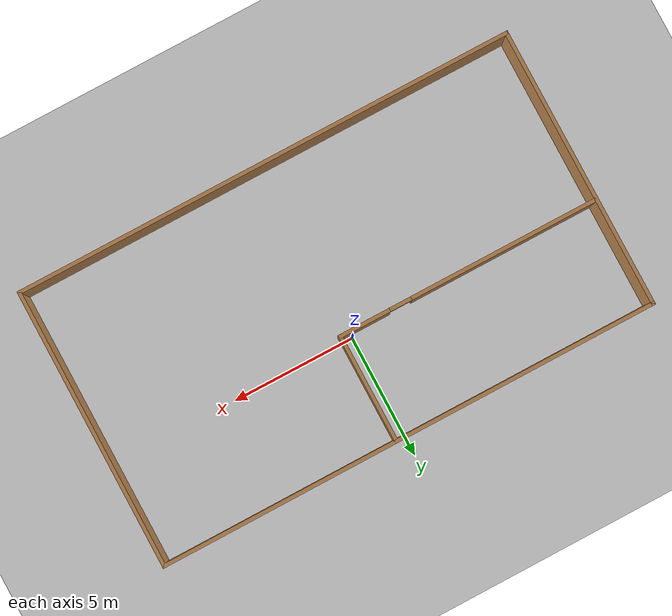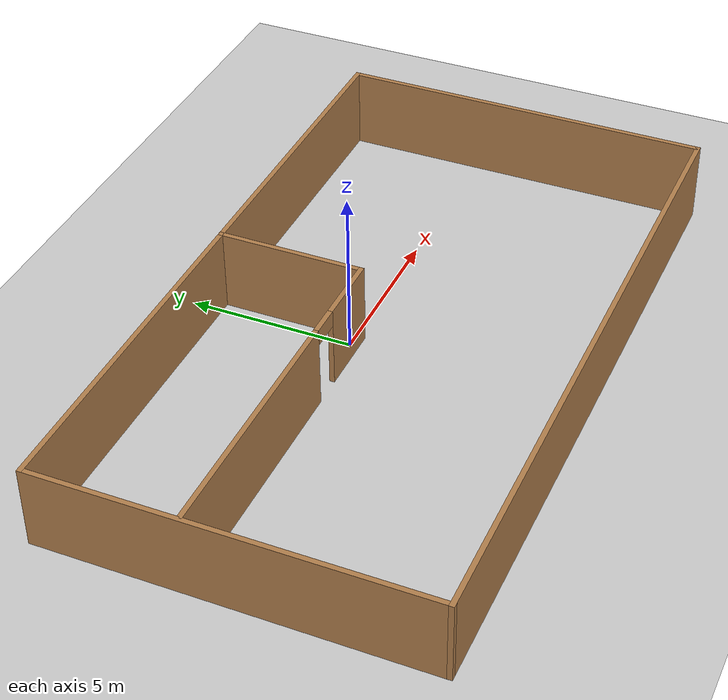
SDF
<sdf version="1.6">
 <world name="default">
  <light name="sun" type="directional">
   <pose>0 0 10 0 -0 0</pose>
   <diffuse>0.8 0.8 0.8 1</diffuse>
   <specular>0.2 0.2 0.2 1</specular>
   <attenuation>
    <range>1000</range>
    <constant>0.9</constant>
    <linear>0.01</linear>
    <quadratic>0.001</quadratic>
   </attenuation>
   <direction>-0.5 0.1 -0.9</direction>
  </light>
  <model name="ground_plane">
   <static>1</static>
   <link name="link">
    <collision name="collision">
     <geometry><plane><normal>0 0 1</normal><size>100 100</size></plane></geometry>
     <surface>
      <contact><collide_bitmask>65535</collide_bitmask></contact>
      <friction><ode><mu>100</mu><mu2>50</mu2></ode></friction>
     </surface>
    </collision>
    <visual name="visual">
     <cast_shadows>0</cast_shadows>
     <geometry><plane><normal>0 0 1</normal><size>100 100</size></plane></geometry>
     <material>
      <script><uri>file://media/materials/scripts/gazebo.material</uri><name>Gazebo/Grey</name></script>
     </material>
    </visual>
   </link>
  </model>
  <gravity>0 0 -9.8</gravity>
  <magnetic_field>6e-06 2.3e-05 -4.2e-05</magnetic_field>
  <atmosphere type="adiabatic"/>
  <physics name="default_physics" default="0" type="ode">
   <max_step_size>0.001</max_step_size>
   <real_time_factor>1</real_time_factor>
   <real_time_update_rate>1000</real_time_update_rate>
  </physics>
  <scene><ambient>0.4 0.4 0.4 1</ambient><background>0.7 0.7 0.7 1</background><shadows>1</shadows></scene>
  <audio><device>default</device></audio>
  <spherical_coordinates>
   <surface_model>EARTH_WGS84</surface_model>
   <latitude_deg>0</latitude_deg>
   <longitude_deg>0</longitude_deg>
   <elevation>0</elevation>
   <heading_deg>0</heading_deg>
  </spherical_coordinates>
  <model name="ex1.model">
   <pose>-0.12618 -1.50632 0 0 -0 0</pose>
   <link name="Wall_0">
    <collision name="Wall_0_Collision">
     <geometry><box><size>20.5 0.15 2.5</size></box></geometry>
     <pose>0 0 1.25 0 -0 0</pose>
    </collision>
    <visual name="Wall_0_Visual">
     <pose>0 0 1.25 0 -0 0</pose>
     <geometry><box><size>20.5 0.15 2.5</size></box></geometry>
     <material>
      <script><uri>file://media/materials/scripts/gazebo.material</uri><name>Gazebo/Wood</name></script>
      <ambient>1 1 1 1</ambient>
     </material>
     <meta><layer>0</layer></meta>
    </visual>
    <pose>0 5.675 0 0 -0 0</pose>
   </link>
   <link name="Wall_1">
    <collision name="Wall_1_Collision">
     <geometry><box><size>11.5 0.15 2.5</size></box></geometry>
     <pose>0 0 1.25 0 -0 0</pose>
    </collision>
    <visual name="Wall_1_Visual">
     <pose>0 0 1.25 0 -0 0</pose>
     <geometry><box><size>11.5 0.15 2.5</size></box></geometry>
     <material>
      <script><uri>file://media/materials/scripts/gazebo.material</uri><name>Gazebo/Wood</name></script>
      <ambient>1 1 1 1</ambient>
     </material>
     <meta><layer>0</layer></meta>
    </visual>
    <pose>10.175 0 0 0 -0 -1.5708</pose>
   </link>
   <link name="Wall_2">
    <collision name="Wall_2_Collision">
     <geometry><box><size>20.5 0.15 2.5</size></box></geometry>
     <pose>0 0 1.25 0 -0 0</pose>
    </collision>
    <visual name="Wall_2_Visual">
     <pose>0 0 1.25 0 -0 0</pose>
     <geometry><box><size>20.5 0.15 2.5</size></box></geometry>
     <material>
      <script><uri>file://media/materials/scripts/gazebo.material</uri><name>Gazebo/Wood</name></script>
      <ambient>1 1 1 1</ambient>
     </material>
     <meta><layer>0</layer></meta>
    </visual>
    <pose>0 -5.675 0 0 -0 3.14159</pose>
   </link>
   <link name="Wall_3">
    <collision name="Wall_3_Collision">
     <geometry><box><size>11.5 0.15 2.5</size></box></geometry>
     <pose>0 0 1.25 0 -0 0</pose>
    </collision>
    <visual name="Wall_3_Visual">
     <pose>0 0 1.25 0 -0 0</pose>
     <geometry><box><size>11.5 0.15 2.5</size></box></geometry>
     <material>
      <script><uri>file://media/materials/scripts/gazebo.material</uri><name>Gazebo/Wood</name></script>
      <ambient>1 1 1 1</ambient>
     </material>
     <meta><layer>0</layer></meta>
    </visual>
    <pose>-10.175 0 0 0 -0 1.5708</pose>
   </link>
   <link name="Wall_5">
    <pose>-4.76946 1.31283 0 0 -0 0</pose>
    <visual name="Wall_5_Visual_0">
     <pose>-1.51694 0 1.25 0 -0 0</pose>
     <geometry><box><size>7.71612 0.15 2.5</size></box></geometry>
     <material>
      <script><uri>file://media/materials/scripts/gazebo.material</uri><name>Gazebo/Wood</name></script>
      <ambient>1 1 1 1</ambient>
     </material>
     <meta><layer>0</layer></meta>
    </visual>
    <collision name="Wall_5_Collision_0">
     <geometry><box><size>7.71612 0.15 2.5</size></box></geometry>
     <pose>-1.51694 0 1.25 0 -0 0</pose>
    </collision>
    <visual name="Wall_5_Visual_1">
     <pose>4.30806 0 1.25 0 -0 0</pose>
     <geometry><box><size>2.13388 0.15 2.5</size></box></geometry>
     <material>
      <script><uri>file://media/materials/scripts/gazebo.material</uri><name>Gazebo/Wood</name></script>
      <ambient>1 1 1 1</ambient>
     </material>
     <meta><layer>0</layer></meta>
    </visual>
    <collision name="Wall_5_Collision_1">
     <geometry><box><size>2.13388 0.15 2.5</size></box></geometry>
     <pose>4.30806 0 1.25 0 -0 0</pose>
    </collision>
    <visual name="Wall_5_Visual_2">
     <pose>2.79112 0 2.25 0 -0 0</pose>
     <geometry><box><size>0.9 0.15 0.5</size></box></geometry>
     <material>
      <script><uri>file://media/materials/scripts/gazebo.material</uri><name>Gazebo/Wood</name></script>
      <ambient>1 1 1 1</ambient>
     </material>
     <meta><layer>0</layer></meta>
    </visual>
    <collision name="Wall_5_Collision_2">
     <geometry><box><size>0.9 0.15 0.5</size></box></geometry>
     <pose>2.79112 0 2.25 0 -0 0</pose>
    </collision>
   </link>
   <link name="Wall_6">
    <collision name="Wall_6_Collision">
     <geometry><box><size>4.5 0.15 2.5</size></box></geometry>
     <pose>0 0 1.25 0 -0 0</pose>
    </collision>
    <visual name="Wall_6_Visual">
     <pose>0 0 1.25 0 -0 0</pose>
     <geometry><box><size>4.5 0.15 2.5</size></box></geometry>
     <material>
      <script><uri>file://media/materials/scripts/gazebo.material</uri><name>Gazebo/Wood</name></script>
      <ambient>1 1 1 1</ambient>
     </material>
     <meta><layer>0</layer></meta>
    </visual>
    <pose>0.530536 3.48783 0 0 -0 1.5708</pose>
   </link>
   <static>1</static>
  </model>
 </world>
</sdf>
